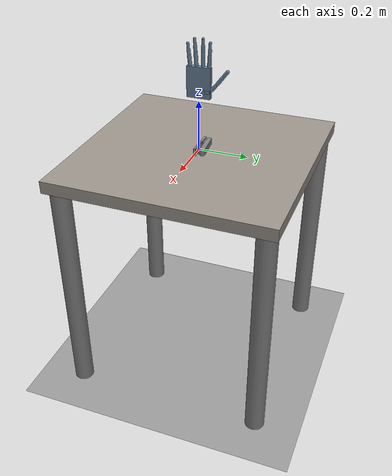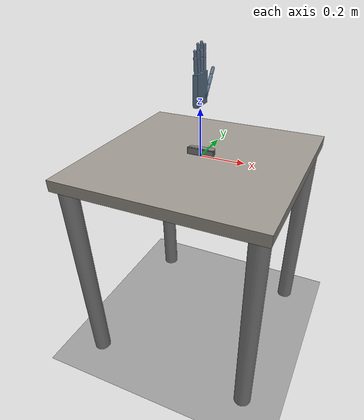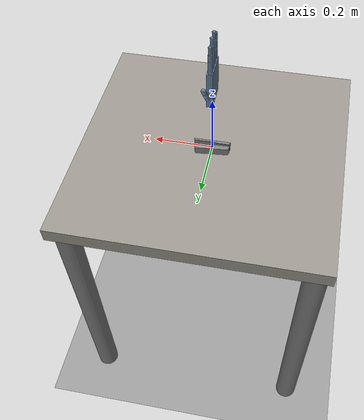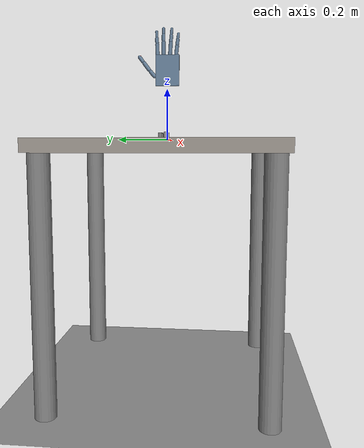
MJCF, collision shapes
<mujoco model="robot">
    <compiler angle="radian" convexhull="false" inertiagrouprange="2 6" meshdir="E:\zju\newhand_stl\compress" />
    <option cone="elliptic" impratio="100" timestep="0.0002" />
    <asset>

        <texture builtin="gradient" height="32" rgb1="0.88235 0.95686 0.95294" rgb2="0.43922 0.42353 0.38039" type="skybox" width="32" />
        <texture builtin="checker" height="512" name="robot0:texplane" rgb1="0.2 0.2 0.2" rgb2="1 1 1" type="2d" width="512" />
        <texture builtin="flat" height="127" mark="cross" markrgb="0 0 0" name="robot0:texgeom" random="0.01" rgb1="0 0 0" rgb2="1 1 1" type="cube" width="127" />
        <texture file="E:/zju/X-handsupervisedlearning/assets_ball/marble.png" name="marblecube" type="cube" />

        <material name="robot0:MatGnd" reflectance="0.5" texrepeat="2 2" texture="robot0:texplane" texuniform="true" />
        <material name="robot0:MatColl" reflectance="0.5" rgba="0.4 0.5 0.6 1" shininess="0.3" specular="1" />
        <material name="robot0:MatViz" reflectance="0.5" rgba="0.93 0.93 0.93 1" shininess="0.1" specular="0.75" />
        <material name="robot0:object" texture="robot0:texgeom" texuniform="false" />
        <material name="tablecube" rgba="0.8 0.8 0.8 1" texture="marblecube" />

        <mesh file="handbase.stl" name="robot0:palm" smoothnormal="true" />
        <mesh file="thumb1.stl" name="robot0:th3" smoothnormal="true" />
        <mesh file="thumb2.stl" name="robot0:th2" smoothnormal="true" />
        <mesh file="thumb3.stl" name="robot0:th1" smoothnormal="true" />
        <mesh file="index1.stl" name="robot0:ff3" smoothnormal="true" />
        <mesh file="index2.stl" name="robot0:ff2" smoothnormal="true" />
        <mesh file="index3.stl" name="robot0:ff1" smoothnormal="true" />
        <mesh file="middle1.stl" name="robot0:mf3" smoothnormal="true" />
        <mesh file="middle2.stl" name="robot0:mf2" smoothnormal="true" />
        <mesh file="middle3.stl" name="robot0:mf1" smoothnormal="true" />
        <mesh file="ring1.stl" name="robot0:rf3" smoothnormal="true" />
        <mesh file="ring2.stl" name="robot0:rf2" smoothnormal="true" />
        <mesh file="ring3.stl" name="robot0:rf1" smoothnormal="true" />
        <mesh file="little1.stl" name="robot0:lf3" smoothnormal="true" />
        <mesh file="little2.stl" name="robot0:lf2" smoothnormal="true" />
        <mesh file="little3.stl" name="robot0:lf1" smoothnormal="true" />
    </asset>

    <default>
        <default class="robot0:asset_class">
            <geom conaffinity="1" condim="4" contype="1" friction="1 0.005 0.001" margin="0.001" />
            <joint damping="0.05" limited="true" />
            <general ctrllimited="true" ctrlrange="-0.3 0.3" />
            <site rgba="0.4 0.9 0.4 1" size="0.005" />
        </default>
        <default class="robot0:D_Touch">
            <site group="4" pos="0.001 -0.001 0.018" rgba="0.8 0.8 0.8 0.15" size="0.01 0.005 0.013" type="box" />
        </default>
        <default class="robot0:DC_obj">
            <geom conaffinity="1" condim="4" contype="1" group="4" margin="0.001" />
        </default>
        <default class="robot0:DC_Hand">
            <geom conaffinity="0" condim="4" contype="1" group="4" margin="0.001" material="robot0:MatColl" />
        </default>
        <default class="robot0:D_Vizual">
            <geom conaffinity="0" contype="0" group="0" material="robot0:MatViz" rgba="0 0 0 1" type="mesh" />
        </default>
        <default class="robot0:free">
            <joint armature="0" damping="0" limited="false" type="free" />
        </default>
        <default class="robot0:contact">
            <site group="1" rgba="1 0 0 1" size="0.001" type="sphere" />
        </default>
    </default>

    <worldbody>
        <geom conaffinity="0" contype="1" material="robot0:MatGnd" name="ground" pos="0 0 -1" size="2 2 0.25" type="plane" />
        <light diffuse=".7 .7 .7" dir="1 1.0 -4" directional="false" pos="-1 -1.0 4.0" specular="0.03 0.03 0.03" />

        <body name="table">
            <geom condim="4" friction="1 0.1 0.001" material="tablecube" name="table" pos="0 0 -0.025" size="0.45 0.45 0.025" solref="0.002 0.1" type="box" />
            <geom conaffinity="0" contype="0" pos="0.4 0.4 -0.501" quat="0 1 0 0" size="0.04 0.5" type="cylinder" />
            <geom conaffinity="0" contype="0" pos="-0.4 0.4 -0.501" quat="0 1 0 0" size="0.04 0.5" type="cylinder" />
            <geom conaffinity="0" contype="0" pos="0.4 -0.4 -0.501" quat="0 1 0 0" size="0.04 0.5" type="cylinder" />
            <geom conaffinity="0" contype="0" pos="-0.4 -0.4 -0.501" quat="0 1 0 0" size="0.04 0.5" type="cylinder" />
        </body>

        <body euler="0 0 0" name="robot0:hand mount" pos="0 0 0.2">
            <joint armature="0" axis="1 0 0" damping="10" limited="false" name="robot0:root_x" pos="0 0 0" type="slide" />
            <joint armature="0" axis="0 1 0" damping="10" limited="false" name="robot0:root_y" pos="0 0 0" type="slide" />
            <joint armature="0" axis="0 0 1" damping="10" limited="false" name="robot0:root_z" pos="0 0 0" type="slide" />
            <joint armature="0" axis="1 0 0" damping="1" limited="false" name="robot0:root_rotationx" pos="0 0 0" type="hinge" />
            <joint armature="0" axis="0 1 0" damping="1" limited="false" name="robot0:root_rotationy" pos="0 0 0" type="hinge" />
            <joint armature="0" axis="0 0 1" damping="1" limited="false" name="robot0:root_rotationz" pos="0 0 0" type="hinge" />
            <body childclass="robot0:asset_class" name="robot0:palm" pos="0 0 -0">
                <geom class="robot0:DC_Hand" name="robot0:C_palm0" pos="0 0 0.075" size="0.01 0.047 0.06" type="box" />
                <geom class="robot0:D_Vizual" mesh="robot0:palm" name="robot0:V_palm" pos="0 0 0" />
                <body euler="-0.0395 0 0" name="robot0:ffknuckle" pos="-0.00135 0.03919 0.13556">
                    <body name="robot0:ffproximal" pos="0 0 0">
                        <joint axis="0 1 0" name="robot0:FFJ2" pos="0 0 0" range="0 1.571" type="hinge" />
                        <geom class="robot0:D_Vizual" mesh="robot0:ff3" name="robot0:V_ffproximal" />
                        <geom class="robot0:DC_Hand" name="robot0:C_ffproximal" pos="0 0 0.02" size="0.0075 0.02" type="capsule" />
                        <body name="robot0:ffmiddle" pos="0 0 0.046">
                            <joint axis="0 1 0" name="robot0:FFJ1" pos="0 0 0" range="0 1.571" type="hinge" />
                            <geom class="robot0:D_Vizual" mesh="robot0:ff2" name="robot0:V_ffmiddle" />
                            <geom class="robot0:DC_Hand" name="robot0:C_ffmiddle" pos="0 0 0.009" size="0.007 0.008" type="capsule" />
                            <body name="robot0:ffdistal" pos="0 0 0.023">
                                <joint axis="0 1 0" name="robot0:FFJ0" pos="0 0 0" range="0 1.571" type="hinge" />
                                <geom class="robot0:D_Vizual" mesh="robot0:ff1" name="robot0:V_ffdistal" pos="0 0 0.001" />
                                <geom class="robot0:DC_Hand" condim="4" name="robot0:C_ffdistal" pos="0 0 0.01" size="0.0055 0.01" type="capsule" />
                                <site class="robot0:D_Touch" name="robot0:Tch_fftip" />
                                <site class="robot0:contact" name="robot0:ff_contact" pos=" 0.0055 0 0.02" />
                            </body>
                        </body>
                    </body>
                </body>
                <body name="robot0:mfknuckle" pos="-0.00128 0.01520 0.13822">
                    <body name="robot0:mfproximal" pos="0 0 0">
                        <joint axis="0 1 0" name="robot0:MFJ2" pos="0 0 0" range="0 1.571" type="hinge" />
                        <geom class="robot0:D_Vizual" mesh="robot0:mf3" name="robot0:V_mfproximal" />
                        <geom class="robot0:DC_Hand" name="robot0:C_mfproximal" pos="0 0 0.023" size="0.0075 0.023" type="capsule" />
                        <body name="robot0:mfmiddle" pos="0 0 0.050">
                            <joint axis="0 1 0" name="robot0:MFJ1" pos="0 0 0" range="0 1.571" type="hinge" />
                            <geom class="robot0:D_Vizual" mesh="robot0:mf2" name="robot0:V_mfmiddle" />
                            <geom class="robot0:DC_Hand" name="robot0:C_mfmiddle" pos="0 0 0.013" size="0.007 0.0105" type="capsule" />
                            <body name="robot0:mfdistal" pos="0 0 0.030">
                                <joint axis="0 1 0" name="robot0:MFJ0" pos="0 0 0" range="0 1.571" type="hinge" />
                                <geom class="robot0:D_Vizual" mesh="robot0:mf1" name="robot0:V_mfdistal" />
                                <geom class="robot0:DC_Hand" name="robot0:C_mfdistal" pos="0 0 0.009" size="0.0055 0.009" type="capsule" />
                                <site class="robot0:D_Touch" name="robot0:Tch_mftip" />
                                <site class="robot0:contact" name="robot0:mf_contact" pos=" 0.0055 0 0.018" />
                            </body>
                        </body>
                    </body>
                </body>
                <body euler="0.0726 0 0" name="robot0:rfknuckle" pos="-0.00121 -0.01057 0.13759">
                    <body name="robot0:rfproximal" pos="0 0 0">
                        <joint axis="0 1 0" name="robot0:RFJ2" pos="0 0 0" range="0 1.571" type="hinge" />
                        <geom class="robot0:D_Vizual" mesh="robot0:rf3" name="robot0:V_rfproximal" />
                        <geom class="robot0:DC_Hand" name="robot0:C_rfproximal" pos="0 0 0.022" size="0.0075 0.022" type="capsule" />
                        <body name="robot0:rfmiddle" pos="0 0 0.048">
                            <joint axis="0 1 0" name="robot0:RFJ1" pos="0 0 0" range="0 1.571" type="hinge" />
                            <geom class="robot0:D_Vizual" mesh="robot0:rf2" name="robot0:V_rfmiddle" />
                            <geom class="robot0:DC_Hand" name="robot0:C_rfmiddle" pos="0 0 0.0125" size="0.007 0.0105" type="capsule" />
                            <body name="robot0:rfdistal" pos="0 0 0.029">
                                <joint axis="0 1 0" name="robot0:RFJ0" pos="0 0 0" range="0 1.571" type="hinge" />
                                <geom class="robot0:D_Vizual" mesh="robot0:rf1" name="robot0:V_rfdistal" pos="0 0 0.001" />
                                <geom class="robot0:DC_Hand" name="robot0:C_rfdistal" pos="0 0 0.01" size="0.0055 0.01" type="capsule" />
                                <site class="robot0:D_Touch" name="robot0:Tch_rftip" />
                                <site class="robot0:contact" name="robot0:rf_contact" pos=" 0.0055 0 0.02" />
                            </body>
                        </body>
                    </body>
                </body>
                <body euler="0.108 0 0.0" name="robot0:lfknuckle" pos="-0.00114 -0.03517 0.13459">
                    <body name="robot0:lfproximal" pos="0 0 0">
                        <joint axis="0 1 0" name="robot0:LFJ2" pos="0 0 0" range="0 1.571" type="hinge" />
                        <geom class="robot0:D_Vizual" mesh="robot0:lf3" name="robot0:V_lfproximal" />
                        <geom class="robot0:DC_Hand" name="robot0:C_lfproximal" pos="0 0 0.017" size="0.0075 0.016" type="capsule" />
                        <body name="robot0:lfmiddle" pos="0 0 0.040">
                            <joint axis="0 1 0" name="robot0:LFJ1" pos="0 0 0" range="0 1.571" type="hinge" />
                            <geom class="robot0:D_Vizual" mesh="robot0:lf2" name="robot0:V_lfmiddle" />
                            <geom class="robot0:DC_Hand" name="robot0:C_lfmiddle" pos="0 0 0.009" size="0.007 0.009" type="capsule" />
                            <body name="robot0:lfdistal" pos="0 0 0.021">
                                <joint axis="0 1 0" name="robot0:LFJ0" pos="0 0 0" range="0 1.571" type="hinge" />
                                <geom class="robot0:D_Vizual" mesh="robot0:lf1" name="robot0:V_lfdistal" pos="0 0 0.001" />
                                <geom class="robot0:DC_Hand" name="robot0:C_lfdistal" pos="0 0 0.01" size="0.0055 0.01" type="capsule" />
                                <site class="robot0:D_Touch" name="robot0:Tch_lftip" />
                                <site class="robot0:contact" name="robot0:lf_contact" pos=" 0.0055 0 0.02" />
                            </body>
                        </body>
                    </body>
                </body>
                <body name="robot0:thbase" pos="0.005 0.02 0.044">
                    <body name="robot0:thproximal" pos="0 0 0">
                        <joint axis="0 0 -1" name="robot0:THJ3" pos="0 0 0" range="0 2" type="hinge" />
                        <geom class="robot0:D_Vizual" euler="0 0 0" mesh="robot0:th3" name="robot0:V_thproximal" />
                        <geom class="robot0:DC_Hand" euler="-0.703 0 0" name="robot0:C_thproximal" pos="0 0.04 0.018" size="0.0075 0.012" type="capsule" />
                        <geom class="robot0:DC_Hand" euler="1.57 0 0" name="robot0:C_thproximal0" pos="0 0.015 0.00" size="0.0085 0.0065 0.01" type="box" />
                        <body axisangle="1 0 0 -0.523" name="robot:th_site0" pos="0 0.0504 0.03697">
                        </body>
                        <body axisangle="1 0 0 -0.65" name="robot0:thhub" pos="0 0.056 0.03697">
                            <joint axis="1 0 0" name="robot0:THJ2" pos="0 0 0" range="0 1.209" type="hinge" />
                            <geom class="robot0:D_Vizual" euler="0 0 -1.571" mesh="robot0:th2" name="robot0:V_thmiddle" />
                            <geom class="robot0:DC_Hand" euler="0 0 0" name="robot0:C_thmiddle" pos="0 0.0 0.0135" size="0.0075 0.0165" type="capsule" />
                            <body name="robot0:thmiddle" pos="0 0 0.039">
                                <joint axis="1 0 0" name="robot0:THJ1" pos="0 0 0" range="0 1.524" type="hinge" />
                                <geom class="robot0:D_Vizual" euler="0 0 -1.571" mesh="robot0:th1" name="robot0:V_thdistal" />
                                <geom class="robot0:DC_Hand" name="robot0:C_thdistal" pos="0 0 0.011" size="0.007 0.011" type="capsule" />
                                <site class="robot0:D_Touch" name="robot0:Tch_thtip" pos="0.00 0 0.015" size="0.009 0.005 0.016" />
                                <site class="robot0:contact" name="robot0:th_contact" pos=" 0.00 -0.007 0.022" />
                            </body>
                        </body>
                    </body>
                </body>
            </body>
        </body>

    </worldbody>

    <tendon>
		<fixed limited="true" name="robot0:T_FFJ2c" range="-0.0001 0.0001" solreflimit="0.002 0.1">
            <joint coef="0.003996" joint="robot0:FFJ2" />
            <joint coef="-0.005806" joint="robot0:FFJ0" />
        </fixed>
        <fixed limited="true" name="robot0:T_FFJ1c" range="-0.0001 0.0001" solreflimit="0.002 0.1">
            <joint coef="0.007094" joint="robot0:FFJ2" />
            <joint coef="-0.005806" joint="robot0:FFJ1" />
        </fixed>

        <fixed limited="true" name="robot0:T_MFJ2c" range="-0.0001 0.0001" solreflimit="0.002 0.1">
            <joint coef="0.003996" joint="robot0:MFJ2" />
            <joint coef="-0.005806" joint="robot0:MFJ0" />
        </fixed>
        <fixed limited="true" name="robot0:T_MFJ1c" range="-0.0001 0.0001" solreflimit="0.002 0.1">
            <joint coef="0.007094" joint="robot0:MFJ2" />
            <joint coef="-0.005806" joint="robot0:MFJ1" />
        </fixed>

        <fixed limited="true" name="robot0:T_RFJ2c" range="-0.0001 0.0001" solreflimit="0.002 0.1">
            <joint coef="0.003996" joint="robot0:RFJ2" />
            <joint coef="-0.005806" joint="robot0:RFJ0" />
        </fixed>
        <fixed limited="true" name="robot0:T_RFJ1c" range="-0.0001 0.0001" solreflimit="0.002 0.1">
            <joint coef="0.007094" joint="robot0:RFJ2" />
            <joint coef="-0.005806" joint="robot0:RFJ1" />
        </fixed>

        <fixed limited="true" name="robot0:T_LFJ2c" range="-0.0001 0.0001" solreflimit="0.002 0.1">
            <joint coef="0.003996" joint="robot0:LFJ2" />
            <joint coef="-0.005806" joint="robot0:LFJ0" />
        </fixed>
        <fixed limited="true" name="robot0:T_LFJ1c" range="-0.0001 0.0001" solreflimit="0.002 0.1">
            <joint coef="0.007094" joint="robot0:LFJ2" />
            <joint coef="-0.005806" joint="robot0:LFJ1" />
        </fixed>

        <fixed limited="true" name="robot0:T_THJ2c" range="-0.0001 0.0001" solreflimit="0.002 0.1">
            <joint coef="0.006921" joint="robot0:THJ1" />
            <joint coef="-0.007218" joint="robot0:THJ2" />
        </fixed>
    </tendon>

    <actuator>
        <motor class="robot0:asset_class" ctrlrange="-100 100" joint="robot0:root_x" name="robot0:root_x" />
        <motor class="robot0:asset_class" ctrlrange="-100 100" joint="robot0:root_y" name="robot0:root_y" />
        <motor class="robot0:asset_class" ctrlrange="-100 100" joint="robot0:root_z" name="robot0:root_z" />
        <motor class="robot0:asset_class" ctrlrange="-100 100" joint="robot0:root_rotationx" name="robot0:root_rotationx" />
        <motor class="robot0:asset_class" ctrlrange="-100 100" joint="robot0:root_rotationy" name="robot0:root_rotationy" />
        <motor class="robot0:asset_class" ctrlrange="-100 100" joint="robot0:root_rotationz" name="robot0:root_rotationz" />
        <motor class="robot0:asset_class" joint="robot0:FFJ2" name="robot0:A_FFJ2" />
        <motor class="robot0:asset_class" joint="robot0:MFJ2" name="robot0:A_MFJ2" />
        <motor class="robot0:asset_class" joint="robot0:RFJ2" name="robot0:A_RFJ2" />
        <motor class="robot0:asset_class" joint="robot0:LFJ2" name="robot0:A_LFJ2" />
		<motor class="robot0:asset_class" joint="robot0:THJ2" name="robot0:A_THJ2" />
		<motor class="robot0:asset_class" joint="robot0:THJ3" name="robot0:A_THJ3" />
    </actuator>

    <sensor>
        <actuatorfrc actuator="robot0:A_FFJ2" name="Sa_FFJ2" />
        <actuatorfrc actuator="robot0:A_MFJ2" name="Sa_MFJ2" />
        <actuatorfrc actuator="robot0:A_RFJ2" name="Sa_RFJ2" />
        <actuatorfrc actuator="robot0:A_LFJ2" name="Sa_LFJ2" />
        <actuatorfrc actuator="robot0:A_THJ3" name="Sa_THJ3" />
        <actuatorfrc actuator="robot0:A_THJ2" name="Sa_THJ2" />

        <touch name="ST_Tch_fftip" site="robot0:Tch_fftip" />
        <touch name="ST_Tch_mftip" site="robot0:Tch_mftip" />
        <touch name="ST_Tch_rftip" site="robot0:Tch_rftip" />
        <touch name="ST_Tch_lftip" site="robot0:Tch_lftip" />
        <touch name="ST_Tch_thtip" site="robot0:Tch_thtip" />
    </sensor>

<asset>
        <mesh file="E:/zju/desktop_organization/functional grasp/frame_work/assets\obj\stapler\1.stl" name="object-0" scale="0.1 0.1 0.1" />
<mesh file="E:/zju/desktop_organization/functional grasp/frame_work/assets\obj\stapler\10.stl" name="object-1" scale="0.1 0.1 0.1" />
<mesh file="E:/zju/desktop_organization/functional grasp/frame_work/assets\obj\stapler\11.stl" name="object-2" scale="0.1 0.1 0.1" />
<mesh file="E:/zju/desktop_organization/functional grasp/frame_work/assets\obj\stapler\12.stl" name="object-3" scale="0.1 0.1 0.1" />
<mesh file="E:/zju/desktop_organization/functional grasp/frame_work/assets\obj\stapler\13.stl" name="object-4" scale="0.1 0.1 0.1" />
<mesh file="E:/zju/desktop_organization/functional grasp/frame_work/assets\obj\stapler\14.stl" name="object-5" scale="0.1 0.1 0.1" />
<mesh file="E:/zju/desktop_organization/functional grasp/frame_work/assets\obj\stapler\15.stl" name="object-6" scale="0.1 0.1 0.1" />
<mesh file="E:/zju/desktop_organization/functional grasp/frame_work/assets\obj\stapler\16.stl" name="object-7" scale="0.1 0.1 0.1" />
<mesh file="E:/zju/desktop_organization/functional grasp/frame_work/assets\obj\stapler\17.stl" name="object-8" scale="0.1 0.1 0.1" />
<mesh file="E:/zju/desktop_organization/functional grasp/frame_work/assets\obj\stapler\2.stl" name="object-9" scale="0.1 0.1 0.1" />
<mesh file="E:/zju/desktop_organization/functional grasp/frame_work/assets\obj\stapler\3.stl" name="object-10" scale="0.1 0.1 0.1" />
<mesh file="E:/zju/desktop_organization/functional grasp/frame_work/assets\obj\stapler\4.stl" name="object-11" scale="0.1 0.1 0.1" />
<mesh file="E:/zju/desktop_organization/functional grasp/frame_work/assets\obj\stapler\5.stl" name="object-12" scale="0.1 0.1 0.1" />
<mesh file="E:/zju/desktop_organization/functional grasp/frame_work/assets\obj\stapler\6.stl" name="object-13" scale="0.1 0.1 0.1" />
<mesh file="E:/zju/desktop_organization/functional grasp/frame_work/assets\obj\stapler\7.stl" name="object-14" scale="0.1 0.1 0.1" />
<mesh file="E:/zju/desktop_organization/functional grasp/frame_work/assets\obj\stapler\8.stl" name="object-15" scale="0.1 0.1 0.1" />
<mesh file="E:/zju/desktop_organization/functional grasp/frame_work/assets\obj\stapler\9.stl" name="object-16" scale="0.1 0.1 0.1" />
<mesh file="E:/zju/desktop_organization/functional grasp/frame_work/assets\visual\stapler\1.stl" name="object" scale="0.001 0.001 0.001" />
      </asset>
      <worldbody>
        <body name="object" pos="0 0 .00">
          <geom class="robot0:DC_obj" euler="-1.571 0 0" mesh="object-0" pos="0 0 0.015" type="mesh" />
<geom class="robot0:DC_obj" euler="-1.571 0 0" mesh="object-1" pos="0 0 0.015" type="mesh" />
<geom class="robot0:DC_obj" euler="-1.571 0 0" mesh="object-2" pos="0 0 0.015" type="mesh" />
<geom class="robot0:DC_obj" euler="-1.571 0 0" mesh="object-3" pos="0 0 0.015" type="mesh" />
<geom class="robot0:DC_obj" euler="-1.571 0 0" mesh="object-4" pos="0 0 0.015" type="mesh" />
<geom class="robot0:DC_obj" euler="-1.571 0 0" mesh="object-5" pos="0 0 0.015" type="mesh" />
<geom class="robot0:DC_obj" euler="-1.571 0 0" mesh="object-6" pos="0 0 0.015" type="mesh" />
<geom class="robot0:DC_obj" euler="-1.571 0 0" mesh="object-7" pos="0 0 0.015" type="mesh" />
<geom class="robot0:DC_obj" euler="-1.571 0 0" mesh="object-8" pos="0 0 0.015" type="mesh" />
<geom class="robot0:DC_obj" euler="-1.571 0 0" mesh="object-9" pos="0 0 0.015" type="mesh" />
<geom class="robot0:DC_obj" euler="-1.571 0 0" mesh="object-10" pos="0 0 0.015" type="mesh" />
<geom class="robot0:DC_obj" euler="-1.571 0 0" mesh="object-11" pos="0 0 0.015" type="mesh" />
<geom class="robot0:DC_obj" euler="-1.571 0 0" mesh="object-12" pos="0 0 0.015" type="mesh" />
<geom class="robot0:DC_obj" euler="-1.571 0 0" mesh="object-13" pos="0 0 0.015" type="mesh" />
<geom class="robot0:DC_obj" euler="-1.571 0 0" mesh="object-14" pos="0 0 0.015" type="mesh" />
<geom class="robot0:DC_obj" euler="-1.571 0 0" mesh="object-15" pos="0 0 0.015" type="mesh" />
<geom class="robot0:DC_obj" euler="-1.571 0 0" mesh="object-16" pos="0 0 0.015" type="mesh" />
<geom class="robot0:D_Vizual" euler="-1.571 0 0" mesh="object" pos="0 0 0.015" rgba="0.5 0.5 0.5 0.8" type="mesh" />
            <joint name="object:joint" type="free" />
        </body>
      </worldbody>
    </mujoco>
